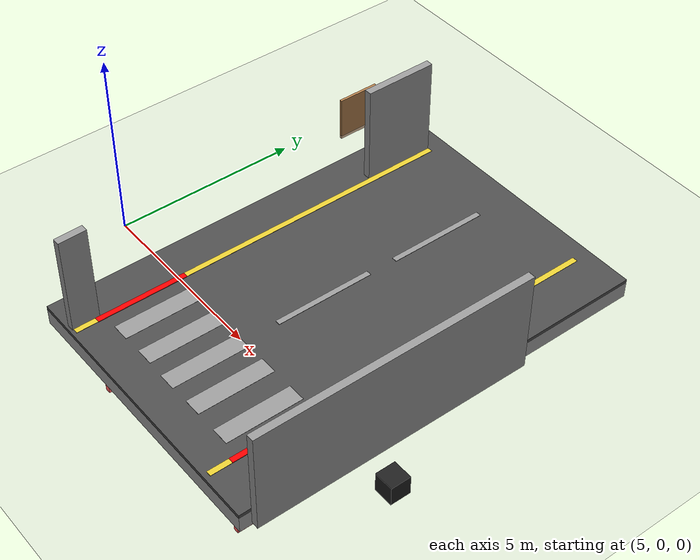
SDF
<sdf version="1.6">
 <world name="default">
  <model name="ground_plane">
   <static>1</static>
   <link name="link">
    <collision name="collision">
     <geometry><plane><normal>0 0 1</normal><size>100 100</size></plane></geometry>
     <surface>
      <contact><collide_bitmask>65535</collide_bitmask></contact>
      <friction><ode><mu>100</mu><mu2>50</mu2></ode></friction>
     </surface>
    </collision>
    <visual name="visual">
     <cast_shadows>0</cast_shadows>
     <geometry><plane><normal>0 0 1</normal><size>100 100</size></plane></geometry>
     <material>
      <script><uri>file://media/materials/scripts/gazebo.material</uri><name>Gazebo/Grey</name></script>
     </material>
    </visual>
   </link>
  </model>
  <model name="grey_wall_1">
   <static>1</static>
   <link name="link">
    <pose>0 0 1.4 0 -0 0</pose>
    <collision name="collision"><geometry><box><size>7.5 0.2 2.8</size></box></geometry></collision>
    <visual name="visual">
     <cast_shadows>0</cast_shadows>
     <geometry><box><size>7.5 0.2 2.8</size></box></geometry>
     <material>
      <script>
       <uri>model://grey_wall/materials/scripts</uri>
       <uri>model://grey_wall/materials/textures</uri>
       <name>vrc/grey_wall</name>
      </script>
     </material>
    </visual>
   </link>
   <pose>14.5585 0.893344 0 0 -0 1.56876</pose>
  </model>
  <model name="grey_wall_clone_0">
   <link name="link">
    <pose>2.90621 0.028382 1.4 0 -0 0</pose>
    <inertial>
     <mass>1</mass>
     <inertia><ixx>1</ixx><ixy>0</ixy><ixz>0</ixz><iyy>1</iyy><iyz>0</iyz><izz>1</izz></inertia>
    </inertial>
    <visual name="visual">
     <cast_shadows>0</cast_shadows>
     <geometry><box><size>2 0.2 2.8</size></box></geometry>
     <material>
      <script>
       <uri>model://grey_wall/materials/scripts</uri>
       <uri>model://grey_wall/materials/textures</uri>
       <name>vrc/grey_wall</name>
      </script>
      <shader type="pixel"><normal_map>__default__</normal_map></shader>
      <ambient>1 1 1 1</ambient>
      <diffuse>1 1 1 1</diffuse>
      <specular>0 0 0 1</specular>
      <emissive>0 0 0 1</emissive>
     </material>
    </visual>
    <collision name="collision">
     <geometry><box><size>2 0.2 2.8</size></box></geometry>
     <surface>
      <friction>
       <ode><mu>1</mu><mu2>1</mu2><fdir1>0 0 0</fdir1><slip1>0</slip1><slip2>0</slip2></ode>
       <torsional>
        <coefficient>1</coefficient>
        <patch_radius>0</patch_radius>
        <surface_radius>0</surface_radius>
        <use_patch_radius>1</use_patch_radius>
        <ode><slip>0</slip></ode>
       </torsional>
      </friction>
      <bounce><restitution_coefficient>0</restitution_coefficient><threshold>1e+06</threshold></bounce>
      <contact>
       <collide_without_contact>0</collide_without_contact>
       <collide_without_contact_bitmask>1</collide_without_contact_bitmask>
       <collide_bitmask>1</collide_bitmask>
       <ode>
        <soft_cfm>0</soft_cfm>
        <soft_erp>0.2</soft_erp>
        <kp>1e+13</kp>
        <kd>1</kd>
        <max_vel>0.01</max_vel>
        <min_depth>0</min_depth>
       </ode>
       <bullet>
        <split_impulse>1</split_impulse>
        <split_impulse_penetration_threshold>-0.01</split_impulse_penetration_threshold>
        <soft_cfm>0</soft_cfm>
        <soft_erp>0.2</soft_erp>
        <kp>1e+13</kp>
        <kd>1</kd>
       </bullet>
      </contact>
     </surface>
    </collision>
   </link>
   <static>1</static>
   <pose>7.26761 9.82843 0 0 0 -1.57</pose>
  </model>
  <model name="grey_wall_clone_0_clone_1">
   <link name="link">
    <pose>0 0 1.4 0 -0 0</pose>
    <inertial>
     <mass>1</mass>
     <inertia><ixx>1</ixx><ixy>0</ixy><ixz>0</ixz><iyy>1</iyy><iyz>0</iyz><izz>1</izz></inertia>
    </inertial>
    <visual name="visual">
     <cast_shadows>0</cast_shadows>
     <geometry><box><size>0.75 0.2 2.8</size></box></geometry>
     <material>
      <script>
       <uri>model://grey_wall/materials/scripts</uri>
       <uri>model://grey_wall/materials/textures</uri>
       <name>vrc/grey_wall</name>
      </script>
      <shader type="pixel"><normal_map>__default__</normal_map></shader>
      <ambient>1 1 1 1</ambient>
      <diffuse>1 1 1 1</diffuse>
      <specular>0 0 0 1</specular>
      <emissive>0 0 0 1</emissive>
     </material>
    </visual>
    <collision name="collision">
     <geometry><box><size>0.75 0.2 2.8</size></box></geometry>
     <surface>
      <friction>
       <ode><mu>1</mu><mu2>1</mu2><fdir1>0 0 0</fdir1><slip1>0</slip1><slip2>0</slip2></ode>
       <torsional>
        <coefficient>1</coefficient>
        <patch_radius>0</patch_radius>
        <surface_radius>0</surface_radius>
        <use_patch_radius>1</use_patch_radius>
        <ode><slip>0</slip></ode>
       </torsional>
      </friction>
      <bounce><restitution_coefficient>0</restitution_coefficient><threshold>1e+06</threshold></bounce>
      <contact>
       <collide_without_contact>0</collide_without_contact>
       <collide_without_contact_bitmask>1</collide_without_contact_bitmask>
       <collide_bitmask>1</collide_bitmask>
       <ode>
        <soft_cfm>0</soft_cfm>
        <soft_erp>0.2</soft_erp>
        <kp>1e+13</kp>
        <kd>1</kd>
        <max_vel>0.01</max_vel>
        <min_depth>0</min_depth>
       </ode>
       <bullet>
        <split_impulse>1</split_impulse>
        <split_impulse_penetration_threshold>-0.01</split_impulse_penetration_threshold>
        <soft_cfm>0</soft_cfm>
        <soft_erp>0.2</soft_erp>
        <kp>1e+13</kp>
        <kd>1</kd>
       </bullet>
      </contact>
     </surface>
    </collision>
   </link>
   <static>1</static>
   <pose>7.30492 -2.5737 0 0 0 -1.54624</pose>
  </model>
  <model name="unit_box_0_clone_22_clone_15_clone_4">
   <link name="link">
    <inertial>
     <mass>1</mass>
     <inertia>
      <ixx>0.166667</ixx>
      <ixy>0</ixy>
      <ixz>0</ixz>
      <iyy>0.166667</iyy>
      <iyz>0</iyz>
      <izz>0.166667</izz>
     </inertia>
    </inertial>
    <visual name="visual">
     <geometry><box><size>0.530101 0.530101 0.530101</size></box></geometry>
     <material>
      <script><name>Gazebo/FlatBlack</name><uri>file://media/materials/scripts/gazebo.material</uri></script>
      <shader type="pixel"><normal_map>__default__</normal_map></shader>
      <ambient>0.1 0.1 0.1 1</ambient>
      <diffuse>0.1 0.1 0.1 1</diffuse>
      <specular>0.01 0.01 0.01 1</specular>
      <emissive>0 0 0 1</emissive>
     </material>
    </visual>
    <collision name="collision">
     <geometry><box><size>0.530101 0.530101 0.530101</size></box></geometry>
     <surface>
      <friction>
       <ode><mu>1</mu><mu2>1</mu2><fdir1>0 0 0</fdir1><slip1>0</slip1><slip2>0</slip2></ode>
       <torsional>
        <coefficient>1</coefficient>
        <patch_radius>0</patch_radius>
        <surface_radius>0</surface_radius>
        <use_patch_radius>1</use_patch_radius>
        <ode><slip>0</slip></ode>
       </torsional>
      </friction>
      <bounce><restitution_coefficient>0</restitution_coefficient><threshold>1e+06</threshold></bounce>
      <contact>
       <collide_without_contact>0</collide_without_contact>
       <collide_without_contact_bitmask>1</collide_without_contact_bitmask>
       <collide_bitmask>1</collide_bitmask>
       <ode>
        <soft_cfm>0</soft_cfm>
        <soft_erp>0.2</soft_erp>
        <kp>1e+13</kp>
        <kd>1</kd>
        <max_vel>0.01</max_vel>
        <min_depth>0</min_depth>
       </ode>
       <bullet>
        <split_impulse>1</split_impulse>
        <split_impulse_penetration_threshold>-0.01</split_impulse_penetration_threshold>
        <soft_cfm>0</soft_cfm>
        <soft_erp>0.2</soft_erp>
        <kp>1e+13</kp>
        <kd>1</kd>
       </bullet>
      </contact>
     </surface>
    </collision>
   </link>
   <static>0</static>
   <pose>15.6128 -0.033067 0.26505 0 0 -0.001316</pose>
  </model>
  <model name="road_marks">
   <link name="Wall_63">
    <pose>2.6855 -0.180493 0.00816 0 0 -1.5708</pose>
    <inertial>
     <inertia><ixx>0</ixx><ixy>0</ixy><ixz>0</ixz><iyy>0</iyy><iyz>0</iyz><izz>0</izz></inertia>
     <mass>0</mass>
    </inertial>
    <visual name="Wall_63_Visual">
     <pose>0 0 1.25 0 -0 0</pose>
     <geometry><box><size>10.85 0.15 0.05</size></box></geometry>
     <material>
      <script><uri>file://media/materials/scripts/gazebo.material</uri><name>Gazebo/ZincYellow</name></script>
      <ambient>1 1 1 1</ambient>
      <shader type="pixel"><normal_map>__default__</normal_map></shader>
      <diffuse>0.7 0.7 0.7 1</diffuse>
      <specular>0.01 0.01 0.01 1</specular>
      <emissive>0 0 0 1</emissive>
     </material>
     <meta><layer>0</layer></meta>
    </visual>
   </link>
   <link name="Wall_68">
    <pose>-2.72228 -0.223638 0.00816 0 0 -1.5708</pose>
    <inertial>
     <mass>1</mass>
     <inertia><ixx>1</ixx><ixy>0</ixy><ixz>0</ixz><iyy>1</iyy><iyz>0</iyz><izz>1</izz></inertia>
    </inertial>
    <visual name="Wall_68_Visual">
     <pose>0 0 1.25 0 -0 0</pose>
     <geometry><box><size>10.85 0.15 0.05</size></box></geometry>
     <material>
      <script><uri>file://media/materials/scripts/gazebo.material</uri><name>Gazebo/ZincYellow</name></script>
      <ambient>1 1 1 1</ambient>
      <shader type="pixel"><normal_map>__default__</normal_map></shader>
      <diffuse>0.7 0.7 0.7 1</diffuse>
      <specular>0.01 0.01 0.01 1</specular>
      <emissive>0 0 0 1</emissive>
     </material>
     <meta><layer>0</layer></meta>
    </visual>
   </link>
   <link name="Wall_70">
    <pose>-0.025427 3.13042 0.00816 0 0 -1.5708</pose>
    <inertial>
     <mass>1</mass>
     <inertia><ixx>1</ixx><ixy>0</ixy><ixz>0</ixz><iyy>1</iyy><iyz>0</iyz><izz>1</izz></inertia>
    </inertial>
    <visual name="Wall_70_Visual">
     <pose>0 0 1.25 0 -0 0</pose>
     <geometry><box><size>2.75 0.15 0.05</size></box></geometry>
     <material>
      <script><uri>file://media/materials/scripts/gazebo.material</uri><name>Gazebo/Grey</name></script>
      <ambient>1 1 1 1</ambient>
      <shader type="pixel"><normal_map>__default__</normal_map></shader>
      <diffuse>0.7 0.7 0.7 1</diffuse>
      <specular>0.01 0.01 0.01 1</specular>
      <emissive>0 0 0 1</emissive>
     </material>
     <meta><layer>0</layer></meta>
    </visual>
   </link>
   <link name="Wall_72">
    <pose>-0.041656 -0.398325 0.00816 0 0 -1.5708</pose>
    <inertial>
     <mass>1</mass>
     <inertia><ixx>1</ixx><ixy>0</ixy><ixz>0</ixz><iyy>1</iyy><iyz>0</iyz><izz>1</izz></inertia>
    </inertial>
    <visual name="Wall_72_Visual">
     <pose>0 0 1.25 0 -0 0</pose>
     <geometry><box><size>2.75 0.15 0.05</size></box></geometry>
     <material>
      <script><uri>file://media/materials/scripts/gazebo.material</uri><name>Gazebo/Grey</name></script>
      <ambient>1 1 1 1</ambient>
      <shader type="pixel"><normal_map>__default__</normal_map></shader>
      <diffuse>0.7 0.7 0.7 1</diffuse>
      <specular>0.01 0.01 0.01 1</specular>
      <emissive>0 0 0 1</emissive>
     </material>
     <meta><layer>0</layer></meta>
    </visual>
   </link>
   <link name="link_0">
    <inertial>
     <mass>1</mass>
     <inertia>
      <ixx>0.166667</ixx>
      <ixy>0</ixy>
      <ixz>0</ixz>
      <iyy>0.166667</iyy>
      <iyz>0</iyz>
      <izz>0.166667</izz>
     </inertia>
    </inertial>
    <pose>-2.75125 -3.91658 1.77945 0 -0 0</pose>
    <visual name="visual">
     <pose>0 0 -0.53 0 -0 0</pose>
     <geometry><box><size>0.2 2 0.03</size></box></geometry>
     <material>
      <lighting>1</lighting>
      <script><uri>file://media/materials/scripts/gazebo.material</uri><name>Gazebo/Red</name></script>
      <shader type="pixel"><normal_map>__default__</normal_map></shader>
      <ambient>0.3 0.3 0.3 1</ambient>
      <diffuse>0.7 0.7 0.7 1</diffuse>
      <specular>0.01 0.01 0.01 1</specular>
      <emissive>0 0 0 1</emissive>
     </material>
    </visual>
   </link>
   <link name="link_0_clone">
    <inertial>
     <mass>1</mass>
     <inertia>
      <ixx>0.166667</ixx>
      <ixy>0</ixy>
      <ixz>0</ixz>
      <iyy>0.166667</iyy>
      <iyz>0</iyz>
      <izz>0.166667</izz>
     </inertia>
    </inertial>
    <pose>2.68914 -4.13721 1.77945 0 -0 0</pose>
    <visual name="visual">
     <pose>0 0 -0.53 0 -0 0</pose>
     <geometry><box><size>0.2 2 0.03</size></box></geometry>
     <material>
      <lighting>1</lighting>
      <script><uri>file://media/materials/scripts/gazebo.material</uri><name>Gazebo/Red</name></script>
      <shader type="pixel"><normal_map>__default__</normal_map></shader>
      <ambient>0.3 0.3 0.3 1</ambient>
      <diffuse>0.7 0.7 0.7 1</diffuse>
      <specular>0.01 0.01 0.01 1</specular>
      <emissive>0 0 0 1</emissive>
     </material>
    </visual>
   </link>
   <static>1</static>
   <pose>10.2045 2.7274 -1.19259 0 -0 0</pose>
  </model>
  <model name="crossing_point_0">
   <link name="Wall_5">
    <pose>0 0 0 0 -0 1.5708</pose>
    <inertial>
     <mass>1</mass>
     <inertia><ixx>1</ixx><ixy>0</ixy><ixz>0</ixz><iyy>1</iyy><iyz>0</iyz><izz>1</izz></inertia>
    </inertial>
    <visual name="Wall_5_Visual">
     <pose>0 0 1.25 0 -0 0</pose>
     <geometry><box><size>2.5 0.15 2.5</size></box></geometry>
     <material>
      <script><uri>file://media/materials/scripts/gazebo.material</uri><name>Gazebo/Grey</name></script>
      <ambient>1 0 0 1</ambient>
      <shader type="pixel"><normal_map>__default__</normal_map></shader>
      <diffuse>0.7 0.7 0.7 1</diffuse>
      <specular>0.01 0.01 0.01 1</specular>
      <emissive>0 0 0 1</emissive>
     </material>
     <meta><layer>0</layer></meta>
    </visual>
   </link>
   <static>1</static>
   <pose>12.8912 -1.04767 -2.40277 0 -0 0</pose>
  </model>
  <model name="crossing_point_1">
   <link name="Wall_5">
    <pose>0 0 0 0 -0 1.5708</pose>
    <inertial>
     <mass>1</mass>
     <inertia><ixx>1</ixx><ixy>0</ixy><ixz>0</ixz><iyy>1</iyy><iyz>0</iyz><izz>1</izz></inertia>
    </inertial>
    <visual name="Wall_5_Visual">
     <pose>0 0 1.25 0 -0 0</pose>
     <geometry><box><size>2.5 0.15 2.5</size></box></geometry>
     <material>
      <script><uri>file://media/materials/scripts/gazebo.material</uri><name>Gazebo/Grey</name></script>
      <ambient>1 0 0 1</ambient>
      <shader type="pixel"><normal_map>__default__</normal_map></shader>
     </material>
     <meta><layer>0</layer></meta>
    </visual>
   </link>
   <static>1</static>
   <pose>7.48828 -1.08378 -2.40253 0 -0 0</pose>
  </model>
  <model name="world_frame">
   <link name="Wall_215">
    <pose>-9.41025 -3.61132 -0.054476 0 -0 1.5708</pose>
    <inertial>
     <mass>1</mass>
     <inertia><ixx>1</ixx><ixy>0</ixy><ixz>0</ixz><iyy>1</iyy><iyz>0</iyz><izz>1</izz></inertia>
    </inertial>
    <visual name="Wall_215_Visual">
     <pose>0 0 0.119 0 -0 0</pose>
     <geometry><box><size>2.1 0.5 0.038</size></box></geometry>
     <material>
      <script><uri>file://media/materials/scripts/gazebo.material</uri><name>Gazebo/Grey</name></script>
      <ambient>1 1 1 1</ambient>
      <shader type="pixel"><normal_map>__default__</normal_map></shader>
      <diffuse>0.7 0.7 0.7 1</diffuse>
      <specular>0.01 0.01 0.01 1</specular>
      <emissive>0 0 0 1</emissive>
     </material>
     <meta><layer>0</layer></meta>
    </visual>
   </link>
   <link name="Wall_217">
    <pose>-7.44858 -3.614 -0.055709 0 0 -1.5708</pose>
    <inertial>
     <mass>1</mass>
     <inertia><ixx>1</ixx><ixy>0</ixy><ixz>0</ixz><iyy>1</iyy><iyz>0</iyz><izz>1</izz></inertia>
    </inertial>
    <visual name="Wall_217_Visual">
     <pose>0 0 0.119 0 -0 0</pose>
     <geometry><box><size>2.1 0.5 0.038</size></box></geometry>
     <material>
      <script><uri>file://media/materials/scripts/gazebo.material</uri><name>Gazebo/Grey</name></script>
      <ambient>1 1 1 1</ambient>
      <shader type="pixel"><normal_map>__default__</normal_map></shader>
      <diffuse>0.7 0.7 0.7 1</diffuse>
      <specular>0.01 0.01 0.01 1</specular>
      <emissive>0 0 0 1</emissive>
     </material>
     <meta><layer>0</layer></meta>
    </visual>
   </link>
   <link name="Wall_219">
    <pose>-8.41515 -3.59149 -0.054693 0 0 -1.5708</pose>
    <inertial>
     <mass>1</mass>
     <inertia><ixx>1</ixx><ixy>0</ixy><ixz>0</ixz><iyy>1</iyy><iyz>0</iyz><izz>1</izz></inertia>
    </inertial>
    <visual name="Wall_219_Visual">
     <pose>0 0 0.119 0 -0 0</pose>
     <geometry><box><size>2.1 0.5 0.038</size></box></geometry>
     <material>
      <script><uri>file://media/materials/scripts/gazebo.material</uri><name>Gazebo/Grey</name></script>
      <ambient>1 1 1 1</ambient>
      <shader type="pixel"><normal_map>__default__</normal_map></shader>
      <diffuse>0.7 0.7 0.7 1</diffuse>
      <specular>0.01 0.01 0.01 1</specular>
      <emissive>0 0 0 1</emissive>
     </material>
     <meta><layer>0</layer></meta>
    </visual>
   </link>
   <link name="Wall_221">
    <pose>-6.45844 -3.59362 -0.053073 0 0 -1.5708</pose>
    <inertial>
     <mass>1</mass>
     <inertia><ixx>1</ixx><ixy>0</ixy><ixz>0</ixz><iyy>1</iyy><iyz>0</iyz><izz>1</izz></inertia>
    </inertial>
    <visual name="Wall_221_Visual">
     <pose>0 0 0.119 0 -0 0</pose>
     <geometry><box><size>2.1 0.5 0.038</size></box></geometry>
     <material>
      <script><uri>file://media/materials/scripts/gazebo.material</uri><name>Gazebo/Grey</name></script>
      <ambient>1 1 1 1</ambient>
      <shader type="pixel"><normal_map>__default__</normal_map></shader>
      <diffuse>0.7 0.7 0.7 1</diffuse>
      <specular>0.01 0.01 0.01 1</specular>
      <emissive>0 0 0 1</emissive>
     </material>
     <meta><layer>0</layer></meta>
    </visual>
   </link>
   <link name="Wall_223">
    <pose>-5.39229 -3.58819 -0.062431 0 0 -1.5708</pose>
    <inertial>
     <mass>1</mass>
     <inertia><ixx>1</ixx><ixy>0</ixy><ixz>0</ixz><iyy>1</iyy><iyz>0</iyz><izz>1</izz></inertia>
    </inertial>
    <visual name="Wall_223_Visual">
     <pose>0 0 0.129 0 -0 0</pose>
     <geometry><box><size>2.1 0.5 0.038</size></box></geometry>
     <material>
      <script><uri>file://media/materials/scripts/gazebo.material</uri><name>Gazebo/Grey</name></script>
      <ambient>1 1 1 1</ambient>
      <shader type="pixel"><normal_map>__default__</normal_map></shader>
      <diffuse>0.7 0.7 0.7 1</diffuse>
      <specular>0.01 0.01 0.01 1</specular>
      <emissive>0 0 0 1</emissive>
     </material>
     <meta><layer>0</layer></meta>
    </visual>
   </link>
   <link name="Wall_91">
    <pose>-12.1146 4.557 -0.100255 0 0 -1.5708</pose>
    <visual name="Wall_91_Visual">
     <pose>0 0 0.625 0 -0 0</pose>
     <geometry><box><size>1.16959 0.07 1.25</size></box></geometry>
     <material>
      <script><uri>file://media/materials/scripts/gazebo.material</uri><name>Gazebo/Wood</name></script>
      <ambient>1 1 1 1</ambient>
      <shader type="pixel"/>
      <diffuse>1 1 1 1</diffuse>
      <specular>0.2 0.2 0.2 1</specular>
      <emissive>0 0 0 1</emissive>
     </material>
     <meta><layer>0</layer></meta>
    </visual>
    <collision name="Wall_91_Collision">
     <pose>0 0 0.625 0 -0 0</pose>
     <geometry><box><size>1.16959 0.07 1.25</size></box></geometry>
     <surface>
      <friction>
       <ode><mu>1</mu><mu2>1</mu2><fdir1>0 0 0</fdir1><slip1>0</slip1><slip2>0</slip2></ode>
       <torsional>
        <coefficient>1</coefficient>
        <patch_radius>0</patch_radius>
        <surface_radius>0</surface_radius>
        <use_patch_radius>1</use_patch_radius>
        <ode><slip>0</slip></ode>
       </torsional>
      </friction>
      <bounce><restitution_coefficient>0</restitution_coefficient><threshold>1e+06</threshold></bounce>
      <contact>
       <collide_without_contact>0</collide_without_contact>
       <collide_without_contact_bitmask>1</collide_without_contact_bitmask>
       <collide_bitmask>1</collide_bitmask>
       <ode>
        <soft_cfm>0</soft_cfm>
        <soft_erp>0.2</soft_erp>
        <kp>1e+13</kp>
        <kd>1</kd>
        <max_vel>0.01</max_vel>
        <min_depth>0</min_depth>
       </ode>
       <bullet>
        <split_impulse>1</split_impulse>
        <split_impulse_penetration_threshold>-0.01</split_impulse_penetration_threshold>
        <soft_cfm>0</soft_cfm>
        <soft_erp>0.2</soft_erp>
        <kp>1e+13</kp>
        <kd>1</kd>
       </bullet>
      </contact>
     </surface>
    </collision>
   </link>
   <static>1</static>
   <pose>17.5761 2.5415 0 0 -0 0</pose>
  </model>
  <model name="asphalt_plane_new">
   <link name="link">
    <inertial>
     <mass>1</mass>
     <inertia><ixx>1</ixx><ixy>0</ixy><ixz>0</ixz><iyy>1</iyy><iyz>0</iyz><izz>1</izz></inertia>
    </inertial>
    <visual name="visual">
     <cast_shadows>0</cast_shadows>
     <geometry><box><size>7.8325 11.4674 0.5486</size></box></geometry>
     <material>
      <script>
       <uri>model://asphalt_plane/materials/scripts</uri>
       <uri>model://asphalt_plane/materials/textures</uri>
       <name>vrc/asphalt</name>
      </script>
      <shader type="pixel"><normal_map>__default__</normal_map></shader>
      <ambient>0.5 0.5 0.5 1</ambient>
      <diffuse>0.5 0.5 0.5 1</diffuse>
      <specular>0.2 0.2 0.2 1</specular>
      <emissive>0 0 0 1</emissive>
     </material>
    </visual>
    <collision name="collision_0">
     <geometry><box><size>7.8325 11.4674 0.5486</size></box></geometry>
     <surface>
      <friction>
       <ode><mu>1</mu><mu2>1</mu2><fdir1>0 0 0</fdir1><slip1>0</slip1><slip2>0</slip2></ode>
       <torsional>
        <coefficient>1</coefficient>
        <patch_radius>0</patch_radius>
        <surface_radius>0</surface_radius>
        <use_patch_radius>1</use_patch_radius>
        <ode><slip>0</slip></ode>
       </torsional>
      </friction>
      <bounce><restitution_coefficient>0</restitution_coefficient><threshold>1e+06</threshold></bounce>
      <contact>
       <collide_without_contact>0</collide_without_contact>
       <collide_without_contact_bitmask>1</collide_without_contact_bitmask>
       <collide_bitmask>1</collide_bitmask>
       <ode>
        <soft_cfm>0</soft_cfm>
        <soft_erp>0.2</soft_erp>
        <kp>1e+13</kp>
        <kd>1</kd>
        <max_vel>0.01</max_vel>
        <min_depth>0</min_depth>
       </ode>
       <bullet>
        <split_impulse>1</split_impulse>
        <split_impulse_penetration_threshold>-0.01</split_impulse_penetration_threshold>
        <soft_cfm>0</soft_cfm>
        <soft_erp>0.2</soft_erp>
        <kp>1e+13</kp>
        <kd>1</kd>
       </bullet>
      </contact>
     </surface>
    </collision>
   </link>
   <static>1</static>
   <pose>10.2649 2.71305 -0.194366 0 -0 0.00191</pose>
  </model>
 </world>
</sdf>
